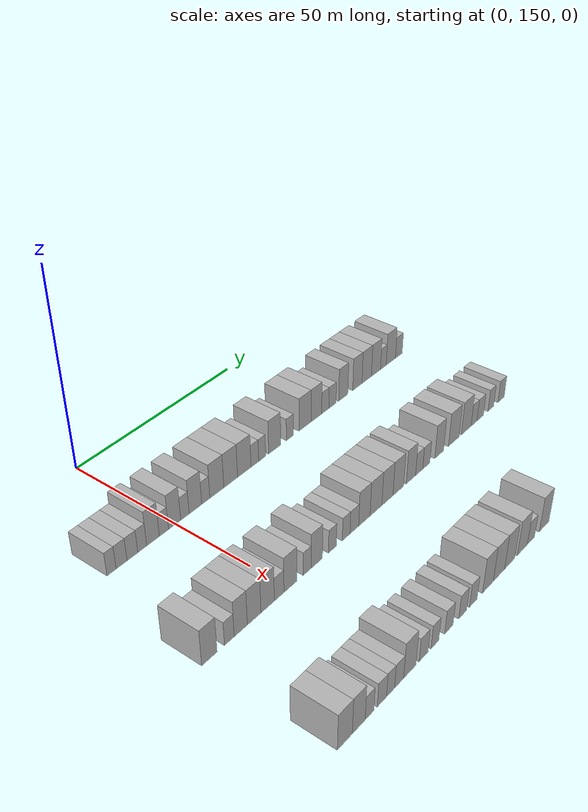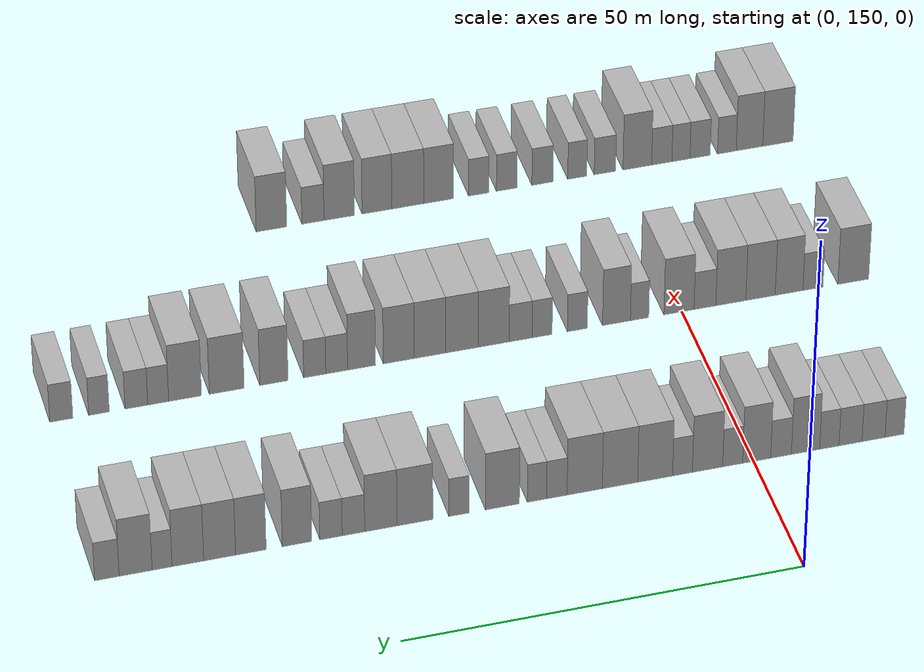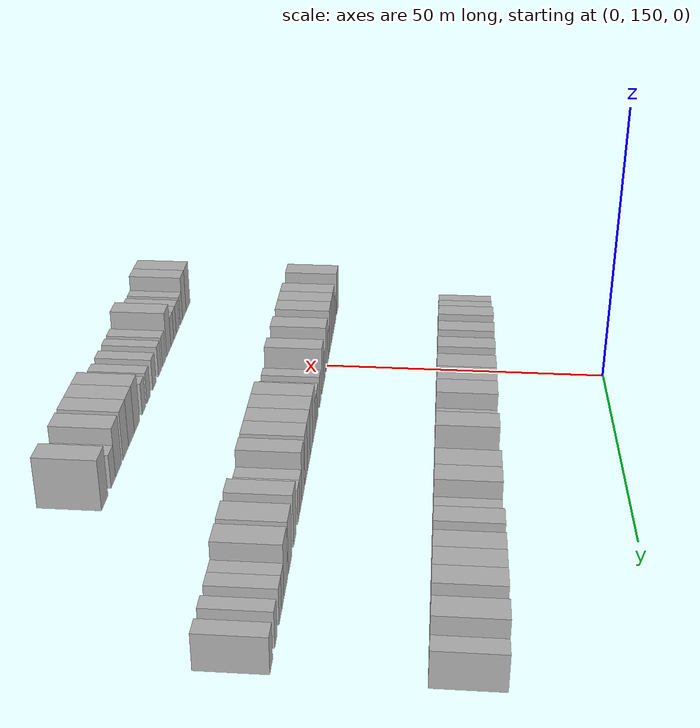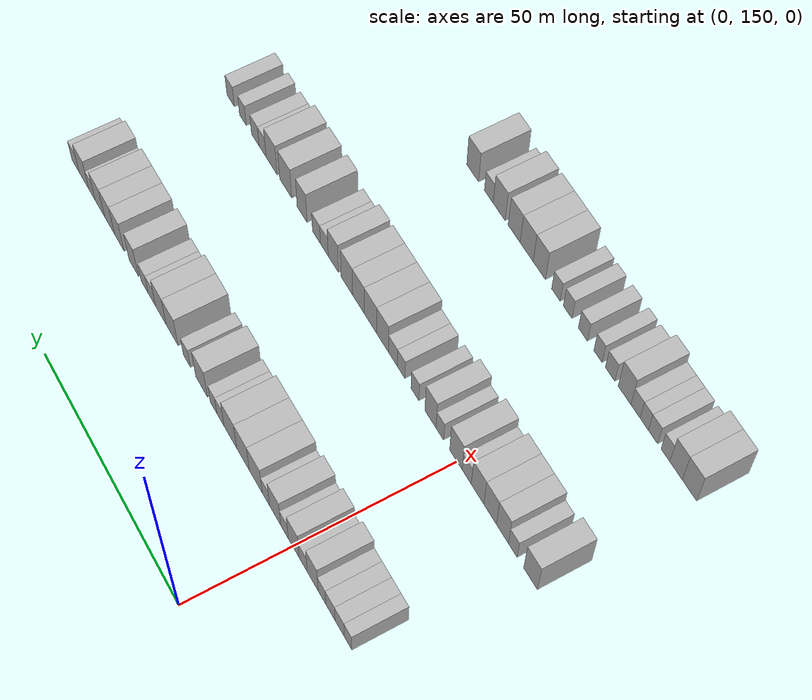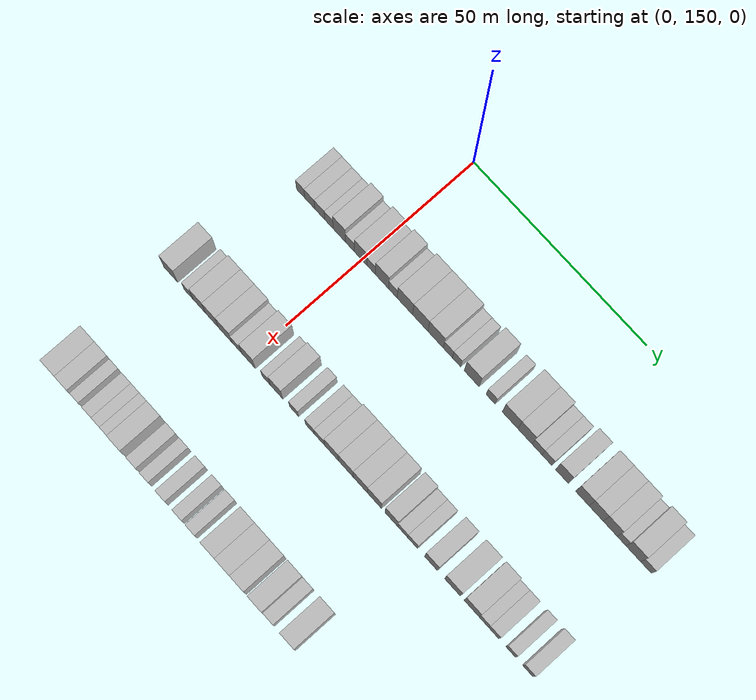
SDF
<sdf version="1.6">
 <world name="default">
  <model name="building_145">
   <static>1</static>
   <pose>25.0000 131.8063 0 0.000000 0.000000 0.000000</pose>
   <link name="link">
    <pose>0 0 3.00 0 0 0</pose>
    <collision name="collision"><geometry><box><size>10.0000 2.4583 6.0000</size></box></geometry></collision>
    <visual name="visual">
     <cast_shadows>0</cast_shadows>
     <geometry><box><size>10.0000 2.4583 6.0000</size></box></geometry>
     <material>
      <script>
       <uri>model://HANNAS_wall/materials/scripts</uri>
       <uri>model://HANNAS_wall/materials/textures</uri>
       <name>vrc/HANNAS_wall</name>
      </script>
     </material>
    </visual>
   </link>
  </model>
  <model name="building_146">
   <static>1</static>
   <pose>25.0000 134.5310 0 0.000000 0.000000 0.000000</pose>
   <link name="link">
    <pose>0 0 3.00 0 0 0</pose>
    <collision name="collision"><geometry><box><size>10.0000 2.9912 6.0000</size></box></geometry></collision>
    <visual name="visual">
     <cast_shadows>0</cast_shadows>
     <geometry><box><size>10.0000 2.9912 6.0000</size></box></geometry>
     <material>
      <script>
       <uri>model://HANNAS_wall/materials/scripts</uri>
       <uri>model://HANNAS_wall/materials/textures</uri>
       <name>vrc/HANNAS_wall</name>
      </script>
     </material>
    </visual>
   </link>
  </model>
  <model name="building_147">
   <static>1</static>
   <pose>25.0000 137.5135 0 0.000000 0.000000 0.000000</pose>
   <link name="link">
    <pose>0 0 3.00 0 0 0</pose>
    <collision name="collision"><geometry><box><size>10.0000 2.9738 6.0000</size></box></geometry></collision>
    <visual name="visual">
     <cast_shadows>0</cast_shadows>
     <geometry><box><size>10.0000 2.9738 6.0000</size></box></geometry>
     <material>
      <script>
       <uri>model://HANNAS_wall/materials/scripts</uri>
       <uri>model://HANNAS_wall/materials/textures</uri>
       <name>vrc/HANNAS_wall</name>
      </script>
     </material>
    </visual>
   </link>
  </model>
  <model name="building_148">
   <static>1</static>
   <pose>25.0000 140.2583 0 0.000000 0.000000 0.000000</pose>
   <link name="link">
    <pose>0 0 3.00 0 0 0</pose>
    <collision name="collision"><geometry><box><size>10.0000 2.5157 6.0000</size></box></geometry></collision>
    <visual name="visual">
     <cast_shadows>0</cast_shadows>
     <geometry><box><size>10.0000 2.5157 6.0000</size></box></geometry>
     <material>
      <script>
       <uri>model://HANNAS_wall/materials/scripts</uri>
       <uri>model://HANNAS_wall/materials/textures</uri>
       <name>vrc/HANNAS_wall</name>
      </script>
     </material>
    </visual>
   </link>
  </model>
  <model name="building_149">
   <static>1</static>
   <pose>25.0000 143.3381 0 0.000000 0.000000 0.000000</pose>
   <link name="link">
    <pose>0 0 4.50 0 0 0</pose>
    <collision name="collision"><geometry><box><size>10.0000 3.6441 9.0000</size></box></geometry></collision>
    <visual name="visual">
     <cast_shadows>0</cast_shadows>
     <geometry><box><size>10.0000 3.6441 9.0000</size></box></geometry>
     <material>
      <script>
       <uri>model://HANNAS_wall/materials/scripts</uri>
       <uri>model://HANNAS_wall/materials/textures</uri>
       <name>vrc/HANNAS_wall</name>
      </script>
     </material>
    </visual>
   </link>
  </model>
  <model name="building_150">
   <static>1</static>
   <pose>25.0000 146.4960 0 0.000000 0.000000 0.000000</pose>
   <link name="link">
    <pose>0 0 3.00 0 0 0</pose>
    <collision name="collision"><geometry><box><size>10.0000 2.6716 6.0000</size></box></geometry></collision>
    <visual name="visual">
     <cast_shadows>0</cast_shadows>
     <geometry><box><size>10.0000 2.6716 6.0000</size></box></geometry>
     <material>
      <script>
       <uri>model://HANNAS_wall/materials/scripts</uri>
       <uri>model://HANNAS_wall/materials/textures</uri>
       <name>vrc/HANNAS_wall</name>
      </script>
     </material>
    </visual>
   </link>
  </model>
  <model name="building_151">
   <static>1</static>
   <pose>25.0000 149.6413 0 0.000000 0.000000 0.000000</pose>
   <link name="link">
    <pose>0 0 4.50 0 0 0</pose>
    <collision name="collision"><geometry><box><size>10.0000 3.6190 9.0000</size></box></geometry></collision>
    <visual name="visual">
     <cast_shadows>0</cast_shadows>
     <geometry><box><size>10.0000 3.6190 9.0000</size></box></geometry>
     <material>
      <script>
       <uri>model://HANNAS_wall/materials/scripts</uri>
       <uri>model://HANNAS_wall/materials/textures</uri>
       <name>vrc/HANNAS_wall</name>
      </script>
     </material>
    </visual>
   </link>
  </model>
  <model name="building_152">
   <static>1</static>
   <pose>25.0000 152.7223 0 0.000000 0.000000 0.000000</pose>
   <link name="link">
    <pose>0 0 3.00 0 0 0</pose>
    <collision name="collision"><geometry><box><size>10.0000 2.5431 6.0000</size></box></geometry></collision>
    <visual name="visual">
     <cast_shadows>0</cast_shadows>
     <geometry><box><size>10.0000 2.5431 6.0000</size></box></geometry>
     <material>
      <script>
       <uri>model://HANNAS_wall/materials/scripts</uri>
       <uri>model://HANNAS_wall/materials/textures</uri>
       <name>vrc/HANNAS_wall</name>
      </script>
     </material>
    </visual>
   </link>
  </model>
  <model name="building_153">
   <static>1</static>
   <pose>25.0000 155.9343 0 0.000000 0.000000 0.000000</pose>
   <link name="link">
    <pose>0 0 4.50 0 0 0</pose>
    <collision name="collision"><geometry><box><size>10.0000 3.8809 9.0000</size></box></geometry></collision>
    <visual name="visual">
     <cast_shadows>0</cast_shadows>
     <geometry><box><size>10.0000 3.8809 9.0000</size></box></geometry>
     <material>
      <script>
       <uri>model://HANNAS_wall/materials/scripts</uri>
       <uri>model://HANNAS_wall/materials/textures</uri>
       <name>vrc/HANNAS_wall</name>
      </script>
     </material>
    </visual>
   </link>
  </model>
  <model name="building_154">
   <static>1</static>
   <pose>25.0000 159.1420 0 0.000000 0.000000 0.000000</pose>
   <link name="link">
    <pose>0 0 3.00 0 0 0</pose>
    <collision name="collision"><geometry><box><size>10.0000 2.5345 6.0000</size></box></geometry></collision>
    <visual name="visual">
     <cast_shadows>0</cast_shadows>
     <geometry><box><size>10.0000 2.5345 6.0000</size></box></geometry>
     <material>
      <script>
       <uri>model://HANNAS_wall/materials/scripts</uri>
       <uri>model://HANNAS_wall/materials/textures</uri>
       <name>vrc/HANNAS_wall</name>
      </script>
     </material>
    </visual>
   </link>
  </model>
  <model name="building_155">
   <static>1</static>
   <pose>25.0000 162.6363 0 0.000000 0.000000 0.000000</pose>
   <link name="link">
    <pose>0 0 4.50 0 0 0</pose>
    <collision name="collision"><geometry><box><size>10.0000 4.4540 9.0000</size></box></geometry></collision>
    <visual name="visual">
     <cast_shadows>0</cast_shadows>
     <geometry><box><size>10.0000 4.4540 9.0000</size></box></geometry>
     <material>
      <script>
       <uri>model://HANNAS_wall/materials/scripts</uri>
       <uri>model://HANNAS_wall/materials/textures</uri>
       <name>vrc/HANNAS_wall</name>
      </script>
     </material>
    </visual>
   </link>
  </model>
  <model name="building_156">
   <static>1</static>
   <pose>25.0000 167.1063 0 0.000000 0.000000 0.000000</pose>
   <link name="link">
    <pose>0 0 4.50 0 0 0</pose>
    <collision name="collision"><geometry><box><size>10.0000 4.4860 9.0000</size></box></geometry></collision>
    <visual name="visual">
     <cast_shadows>0</cast_shadows>
     <geometry><box><size>10.0000 4.4860 9.0000</size></box></geometry>
     <material>
      <script>
       <uri>model://HANNAS_wall/materials/scripts</uri>
       <uri>model://HANNAS_wall/materials/textures</uri>
       <name>vrc/HANNAS_wall</name>
      </script>
     </material>
    </visual>
   </link>
  </model>
  <model name="building_157">
   <static>1</static>
   <pose>25.0000 171.5911 0 0.000000 0.000000 0.000000</pose>
   <link name="link">
    <pose>0 0 4.50 0 0 0</pose>
    <collision name="collision"><geometry><box><size>10.0000 4.4835 9.0000</size></box></geometry></collision>
    <visual name="visual">
     <cast_shadows>0</cast_shadows>
     <geometry><box><size>10.0000 4.4835 9.0000</size></box></geometry>
     <material>
      <script>
       <uri>model://HANNAS_wall/materials/scripts</uri>
       <uri>model://HANNAS_wall/materials/textures</uri>
       <name>vrc/HANNAS_wall</name>
      </script>
     </material>
    </visual>
   </link>
  </model>
  <model name="building_158">
   <static>1</static>
   <pose>25.0000 175.1299 0 0.000000 0.000000 0.000000</pose>
   <link name="link">
    <pose>0 0 3.00 0 0 0</pose>
    <collision name="collision"><geometry><box><size>10.0000 2.5942 6.0000</size></box></geometry></collision>
    <visual name="visual">
     <cast_shadows>0</cast_shadows>
     <geometry><box><size>10.0000 2.5942 6.0000</size></box></geometry>
     <material>
      <script>
       <uri>model://HANNAS_wall/materials/scripts</uri>
       <uri>model://HANNAS_wall/materials/textures</uri>
       <name>vrc/HANNAS_wall</name>
      </script>
     </material>
    </visual>
   </link>
  </model>
  <model name="building_159">
   <static>1</static>
   <pose>25.0000 177.6455 0 0.000000 0.000000 0.000000</pose>
   <link name="link">
    <pose>0 0 3.00 0 0 0</pose>
    <collision name="collision"><geometry><box><size>10.0000 2.4369 6.0000</size></box></geometry></collision>
    <visual name="visual">
     <cast_shadows>0</cast_shadows>
     <geometry><box><size>10.0000 2.4369 6.0000</size></box></geometry>
     <material>
      <script>
       <uri>model://HANNAS_wall/materials/scripts</uri>
       <uri>model://HANNAS_wall/materials/textures</uri>
       <name>vrc/HANNAS_wall</name>
      </script>
     </material>
    </visual>
   </link>
  </model>
  <model name="building_160">
   <static>1</static>
   <pose>25.0000 182.0093 0 0.000000 0.000000 0.000000</pose>
   <link name="link">
    <pose>0 0 4.50 0 0 0</pose>
    <collision name="collision"><geometry><box><size>10.0000 4.2907 9.0000</size></box></geometry></collision>
    <visual name="visual">
     <cast_shadows>0</cast_shadows>
     <geometry><box><size>10.0000 4.2907 9.0000</size></box></geometry>
     <material>
      <script>
       <uri>model://HANNAS_wall/materials/scripts</uri>
       <uri>model://HANNAS_wall/materials/textures</uri>
       <name>vrc/HANNAS_wall</name>
      </script>
     </material>
    </visual>
   </link>
  </model>
  <model name="building_161">
   <static>1</static>
   <pose>25.0000 187.4518 0 0.000000 0.000000 0.000000</pose>
   <link name="link">
    <pose>0 0 3.00 0 0 0</pose>
    <collision name="collision"><geometry><box><size>10.0000 2.5943 6.0000</size></box></geometry></collision>
    <visual name="visual">
     <cast_shadows>0</cast_shadows>
     <geometry><box><size>10.0000 2.5943 6.0000</size></box></geometry>
     <material>
      <script>
       <uri>model://HANNAS_wall/materials/scripts</uri>
       <uri>model://HANNAS_wall/materials/textures</uri>
       <name>vrc/HANNAS_wall</name>
      </script>
     </material>
    </visual>
   </link>
  </model>
  <model name="building_162">
   <static>1</static>
   <pose>25.0000 192.9869 0 0.000000 0.000000 0.000000</pose>
   <link name="link">
    <pose>0 0 4.50 0 0 0</pose>
    <collision name="collision"><geometry><box><size>10.0000 4.4760 9.0000</size></box></geometry></collision>
    <visual name="visual">
     <cast_shadows>0</cast_shadows>
     <geometry><box><size>10.0000 4.4760 9.0000</size></box></geometry>
     <material>
      <script>
       <uri>model://HANNAS_wall/materials/scripts</uri>
       <uri>model://HANNAS_wall/materials/textures</uri>
       <name>vrc/HANNAS_wall</name>
      </script>
     </material>
    </visual>
   </link>
  </model>
  <model name="building_163">
   <static>1</static>
   <pose>25.0000 197.2497 0 0.000000 0.000000 0.000000</pose>
   <link name="link">
    <pose>0 0 4.50 0 0 0</pose>
    <collision name="collision"><geometry><box><size>10.0000 4.0496 9.0000</size></box></geometry></collision>
    <visual name="visual">
     <cast_shadows>0</cast_shadows>
     <geometry><box><size>10.0000 4.0496 9.0000</size></box></geometry>
     <material>
      <script>
       <uri>model://HANNAS_wall/materials/scripts</uri>
       <uri>model://HANNAS_wall/materials/textures</uri>
       <name>vrc/HANNAS_wall</name>
      </script>
     </material>
    </visual>
   </link>
  </model>
  <model name="building_164">
   <static>1</static>
   <pose>25.0000 200.6773 0 0.000000 0.000000 0.000000</pose>
   <link name="link">
    <pose>0 0 3.00 0 0 0</pose>
    <collision name="collision"><geometry><box><size>10.0000 2.8056 6.0000</size></box></geometry></collision>
    <visual name="visual">
     <cast_shadows>0</cast_shadows>
     <geometry><box><size>10.0000 2.8056 6.0000</size></box></geometry>
     <material>
      <script>
       <uri>model://HANNAS_wall/materials/scripts</uri>
       <uri>model://HANNAS_wall/materials/textures</uri>
       <name>vrc/HANNAS_wall</name>
      </script>
     </material>
    </visual>
   </link>
  </model>
  <model name="building_165">
   <static>1</static>
   <pose>25.0000 203.4737 0 0.000000 0.000000 0.000000</pose>
   <link name="link">
    <pose>0 0 3.00 0 0 0</pose>
    <collision name="collision"><geometry><box><size>10.0000 2.7872 6.0000</size></box></geometry></collision>
    <visual name="visual">
     <cast_shadows>0</cast_shadows>
     <geometry><box><size>10.0000 2.7872 6.0000</size></box></geometry>
     <material>
      <script>
       <uri>model://HANNAS_wall/materials/scripts</uri>
       <uri>model://HANNAS_wall/materials/textures</uri>
       <name>vrc/HANNAS_wall</name>
      </script>
     </material>
    </visual>
   </link>
  </model>
  <model name="building_166">
   <static>1</static>
   <pose>25.0000 207.6938 0 0.000000 0.000000 0.000000</pose>
   <link name="link">
    <pose>0 0 4.50 0 0 0</pose>
    <collision name="collision"><geometry><box><size>10.0000 3.6531 9.0000</size></box></geometry></collision>
    <visual name="visual">
     <cast_shadows>0</cast_shadows>
     <geometry><box><size>10.0000 3.6531 9.0000</size></box></geometry>
     <material>
      <script>
       <uri>model://HANNAS_wall/materials/scripts</uri>
       <uri>model://HANNAS_wall/materials/textures</uri>
       <name>vrc/HANNAS_wall</name>
      </script>
     </material>
    </visual>
   </link>
  </model>
  <model name="building_167">
   <static>1</static>
   <pose>25.0000 213.4099 0 0.000000 0.000000 0.000000</pose>
   <link name="link">
    <pose>0 0 4.50 0 0 0</pose>
    <collision name="collision"><geometry><box><size>10.0000 3.7790 9.0000</size></box></geometry></collision>
    <visual name="visual">
     <cast_shadows>0</cast_shadows>
     <geometry><box><size>10.0000 3.7790 9.0000</size></box></geometry>
     <material>
      <script>
       <uri>model://HANNAS_wall/materials/scripts</uri>
       <uri>model://HANNAS_wall/materials/textures</uri>
       <name>vrc/HANNAS_wall</name>
      </script>
     </material>
    </visual>
   </link>
  </model>
  <model name="building_168">
   <static>1</static>
   <pose>25.0000 217.2688 0 0.000000 0.000000 0.000000</pose>
   <link name="link">
    <pose>0 0 4.50 0 0 0</pose>
    <collision name="collision"><geometry><box><size>10.0000 3.9390 9.0000</size></box></geometry></collision>
    <visual name="visual">
     <cast_shadows>0</cast_shadows>
     <geometry><box><size>10.0000 3.9390 9.0000</size></box></geometry>
     <material>
      <script>
       <uri>model://HANNAS_wall/materials/scripts</uri>
       <uri>model://HANNAS_wall/materials/textures</uri>
       <name>vrc/HANNAS_wall</name>
      </script>
     </material>
    </visual>
   </link>
  </model>
  <model name="building_169">
   <static>1</static>
   <pose>25.0000 221.1882 0 0.000000 0.000000 0.000000</pose>
   <link name="link">
    <pose>0 0 4.50 0 0 0</pose>
    <collision name="collision"><geometry><box><size>10.0000 3.8998 9.0000</size></box></geometry></collision>
    <visual name="visual">
     <cast_shadows>0</cast_shadows>
     <geometry><box><size>10.0000 3.8998 9.0000</size></box></geometry>
     <material>
      <script>
       <uri>model://HANNAS_wall/materials/scripts</uri>
       <uri>model://HANNAS_wall/materials/textures</uri>
       <name>vrc/HANNAS_wall</name>
      </script>
     </material>
    </visual>
   </link>
  </model>
  <model name="building_170">
   <static>1</static>
   <pose>25.0000 224.3635 0 0.000000 0.000000 0.000000</pose>
   <link name="link">
    <pose>0 0 3.00 0 0 0</pose>
    <collision name="collision"><geometry><box><size>10.0000 2.4508 6.0000</size></box></geometry></collision>
    <visual name="visual">
     <cast_shadows>0</cast_shadows>
     <geometry><box><size>10.0000 2.4508 6.0000</size></box></geometry>
     <material>
      <script>
       <uri>model://HANNAS_wall/materials/scripts</uri>
       <uri>model://HANNAS_wall/materials/textures</uri>
       <name>vrc/HANNAS_wall</name>
      </script>
     </material>
    </visual>
   </link>
  </model>
  <model name="building_171">
   <static>1</static>
   <pose>25.0000 227.6121 0 0.000000 0.000000 0.000000</pose>
   <link name="link">
    <pose>0 0 4.50 0 0 0</pose>
    <collision name="collision"><geometry><box><size>10.0000 4.0464 9.0000</size></box></geometry></collision>
    <visual name="visual">
     <cast_shadows>0</cast_shadows>
     <geometry><box><size>10.0000 4.0464 9.0000</size></box></geometry>
     <material>
      <script>
       <uri>model://HANNAS_wall/materials/scripts</uri>
       <uri>model://HANNAS_wall/materials/textures</uri>
       <name>vrc/HANNAS_wall</name>
      </script>
     </material>
    </visual>
   </link>
  </model>
  <model name="building_172">
   <static>1</static>
   <pose>25.0000 231.1346 0 0.000000 0.000000 0.000000</pose>
   <link name="link">
    <pose>0 0 3.00 0 0 0</pose>
    <collision name="collision"><geometry><box><size>10.0000 2.9986 6.0000</size></box></geometry></collision>
    <visual name="visual">
     <cast_shadows>0</cast_shadows>
     <geometry><box><size>10.0000 2.9986 6.0000</size></box></geometry>
     <material>
      <script>
       <uri>model://HANNAS_wall/materials/scripts</uri>
       <uri>model://HANNAS_wall/materials/textures</uri>
       <name>vrc/HANNAS_wall</name>
      </script>
     </material>
    </visual>
   </link>
  </model>
  <model name="building_372">
   <static>1</static>
   <pose>55.0000 127.1709 0 0.000000 0.000000 0.000000</pose>
   <link name="link">
    <pose>0 0 4.50 0 0 0</pose>
    <collision name="collision"><geometry><box><size>10.0000 4.1288 9.0000</size></box></geometry></collision>
    <visual name="visual">
     <cast_shadows>0</cast_shadows>
     <geometry><box><size>10.0000 4.1288 9.0000</size></box></geometry>
     <material>
      <script>
       <uri>model://HANNAS_wall/materials/scripts</uri>
       <uri>model://HANNAS_wall/materials/textures</uri>
       <name>vrc/HANNAS_wall</name>
      </script>
     </material>
    </visual>
   </link>
  </model>
  <model name="building_373">
   <static>1</static>
   <pose>55.0000 132.5778 0 0.000000 0.000000 0.000000</pose>
   <link name="link">
    <pose>0 0 3.00 0 0 0</pose>
    <collision name="collision"><geometry><box><size>10.0000 2.6850 6.0000</size></box></geometry></collision>
    <visual name="visual">
     <cast_shadows>0</cast_shadows>
     <geometry><box><size>10.0000 2.6850 6.0000</size></box></geometry>
     <material>
      <script>
       <uri>model://HANNAS_wall/materials/scripts</uri>
       <uri>model://HANNAS_wall/materials/textures</uri>
       <name>vrc/HANNAS_wall</name>
      </script>
     </material>
    </visual>
   </link>
  </model>
  <model name="building_374">
   <static>1</static>
   <pose>55.0000 135.7712 0 0.000000 0.000000 0.000000</pose>
   <link name="link">
    <pose>0 0 4.50 0 0 0</pose>
    <collision name="collision"><geometry><box><size>10.0000 3.7020 9.0000</size></box></geometry></collision>
    <visual name="visual">
     <cast_shadows>0</cast_shadows>
     <geometry><box><size>10.0000 3.7020 9.0000</size></box></geometry>
     <material>
      <script>
       <uri>model://HANNAS_wall/materials/scripts</uri>
       <uri>model://HANNAS_wall/materials/textures</uri>
       <name>vrc/HANNAS_wall</name>
      </script>
     </material>
    </visual>
   </link>
  </model>
  <model name="building_375">
   <static>1</static>
   <pose>55.0000 139.5816 0 0.000000 0.000000 0.000000</pose>
   <link name="link">
    <pose>0 0 4.50 0 0 0</pose>
    <collision name="collision"><geometry><box><size>10.0000 3.9187 9.0000</size></box></geometry></collision>
    <visual name="visual">
     <cast_shadows>0</cast_shadows>
     <geometry><box><size>10.0000 3.9187 9.0000</size></box></geometry>
     <material>
      <script>
       <uri>model://HANNAS_wall/materials/scripts</uri>
       <uri>model://HANNAS_wall/materials/textures</uri>
       <name>vrc/HANNAS_wall</name>
      </script>
     </material>
    </visual>
   </link>
  </model>
  <model name="building_376">
   <static>1</static>
   <pose>55.0000 143.5348 0 0.000000 0.000000 0.000000</pose>
   <link name="link">
    <pose>0 0 4.50 0 0 0</pose>
    <collision name="collision"><geometry><box><size>10.0000 3.9879 9.0000</size></box></geometry></collision>
    <visual name="visual">
     <cast_shadows>0</cast_shadows>
     <geometry><box><size>10.0000 3.9879 9.0000</size></box></geometry>
     <material>
      <script>
       <uri>model://HANNAS_wall/materials/scripts</uri>
       <uri>model://HANNAS_wall/materials/textures</uri>
       <name>vrc/HANNAS_wall</name>
      </script>
     </material>
    </visual>
   </link>
  </model>
  <model name="building_377">
   <static>1</static>
   <pose>55.0000 146.9724 0 0.000000 0.000000 0.000000</pose>
   <link name="link">
    <pose>0 0 3.00 0 0 0</pose>
    <collision name="collision"><geometry><box><size>10.0000 2.8873 6.0000</size></box></geometry></collision>
    <visual name="visual">
     <cast_shadows>0</cast_shadows>
     <geometry><box><size>10.0000 2.8873 6.0000</size></box></geometry>
     <material>
      <script>
       <uri>model://HANNAS_wall/materials/scripts</uri>
       <uri>model://HANNAS_wall/materials/textures</uri>
       <name>vrc/HANNAS_wall</name>
      </script>
     </material>
    </visual>
   </link>
  </model>
  <model name="building_378">
   <static>1</static>
   <pose>55.0000 150.4129 0 0.000000 0.000000 0.000000</pose>
   <link name="link">
    <pose>0 0 4.50 0 0 0</pose>
    <collision name="collision"><geometry><box><size>10.0000 3.9935 9.0000</size></box></geometry></collision>
    <visual name="visual">
     <cast_shadows>0</cast_shadows>
     <geometry><box><size>10.0000 3.9935 9.0000</size></box></geometry>
     <material>
      <script>
       <uri>model://HANNAS_wall/materials/scripts</uri>
       <uri>model://HANNAS_wall/materials/textures</uri>
       <name>vrc/HANNAS_wall</name>
      </script>
     </material>
    </visual>
   </link>
  </model>
  <model name="building_379">
   <static>1</static>
   <pose>55.0000 155.6242 0 0.000000 0.000000 0.000000</pose>
   <link name="link">
    <pose>0 0 3.00 0 0 0</pose>
    <collision name="collision"><geometry><box><size>10.0000 2.4291 6.0000</size></box></geometry></collision>
    <visual name="visual">
     <cast_shadows>0</cast_shadows>
     <geometry><box><size>10.0000 2.4291 6.0000</size></box></geometry>
     <material>
      <script>
       <uri>model://HANNAS_wall/materials/scripts</uri>
       <uri>model://HANNAS_wall/materials/textures</uri>
       <name>vrc/HANNAS_wall</name>
      </script>
     </material>
    </visual>
   </link>
  </model>
  <model name="building_380">
   <static>1</static>
   <pose>55.0000 158.6717 0 0.000000 0.000000 0.000000</pose>
   <link name="link">
    <pose>0 0 4.50 0 0 0</pose>
    <collision name="collision"><geometry><box><size>10.0000 3.6660 9.0000</size></box></geometry></collision>
    <visual name="visual">
     <cast_shadows>0</cast_shadows>
     <geometry><box><size>10.0000 3.6660 9.0000</size></box></geometry>
     <material>
      <script>
       <uri>model://HANNAS_wall/materials/scripts</uri>
       <uri>model://HANNAS_wall/materials/textures</uri>
       <name>vrc/HANNAS_wall</name>
      </script>
     </material>
    </visual>
   </link>
  </model>
  <model name="building_381">
   <static>1</static>
   <pose>55.0000 163.8159 0 0.000000 0.000000 0.000000</pose>
   <link name="link">
    <pose>0 0 3.00 0 0 0</pose>
    <collision name="collision"><geometry><box><size>10.0000 2.6225 6.0000</size></box></geometry></collision>
    <visual name="visual">
     <cast_shadows>0</cast_shadows>
     <geometry><box><size>10.0000 2.6225 6.0000</size></box></geometry>
     <material>
      <script>
       <uri>model://HANNAS_wall/materials/scripts</uri>
       <uri>model://HANNAS_wall/materials/textures</uri>
       <name>vrc/HANNAS_wall</name>
      </script>
     </material>
    </visual>
   </link>
  </model>
  <model name="building_382">
   <static>1</static>
   <pose>55.0000 168.4376 0 0.000000 0.000000 0.000000</pose>
   <link name="link">
    <pose>0 0 3.00 0 0 0</pose>
    <collision name="collision"><geometry><box><size>10.0000 2.6208 6.0000</size></box></geometry></collision>
    <visual name="visual">
     <cast_shadows>0</cast_shadows>
     <geometry><box><size>10.0000 2.6208 6.0000</size></box></geometry>
     <material>
      <script>
       <uri>model://HANNAS_wall/materials/scripts</uri>
       <uri>model://HANNAS_wall/materials/textures</uri>
       <name>vrc/HANNAS_wall</name>
      </script>
     </material>
    </visual>
   </link>
  </model>
  <model name="building_383">
   <static>1</static>
   <pose>55.0000 171.2417 0 0.000000 0.000000 0.000000</pose>
   <link name="link">
    <pose>0 0 3.00 0 0 0</pose>
    <collision name="collision"><geometry><box><size>10.0000 2.9873 6.0000</size></box></geometry></collision>
    <visual name="visual">
     <cast_shadows>0</cast_shadows>
     <geometry><box><size>10.0000 2.9873 6.0000</size></box></geometry>
     <material>
      <script>
       <uri>model://HANNAS_wall/materials/scripts</uri>
       <uri>model://HANNAS_wall/materials/textures</uri>
       <name>vrc/HANNAS_wall</name>
      </script>
     </material>
    </visual>
   </link>
  </model>
  <model name="building_384">
   <static>1</static>
   <pose>55.0000 174.7438 0 0.000000 0.000000 0.000000</pose>
   <link name="link">
    <pose>0 0 4.50 0 0 0</pose>
    <collision name="collision"><geometry><box><size>10.0000 4.0168 9.0000</size></box></geometry></collision>
    <visual name="visual">
     <cast_shadows>0</cast_shadows>
     <geometry><box><size>10.0000 4.0168 9.0000</size></box></geometry>
     <material>
      <script>
       <uri>model://HANNAS_wall/materials/scripts</uri>
       <uri>model://HANNAS_wall/materials/textures</uri>
       <name>vrc/HANNAS_wall</name>
      </script>
     </material>
    </visual>
   </link>
  </model>
  <model name="building_385">
   <static>1</static>
   <pose>55.0000 178.8881 0 0.000000 0.000000 0.000000</pose>
   <link name="link">
    <pose>0 0 4.50 0 0 0</pose>
    <collision name="collision"><geometry><box><size>10.0000 4.2718 9.0000</size></box></geometry></collision>
    <visual name="visual">
     <cast_shadows>0</cast_shadows>
     <geometry><box><size>10.0000 4.2718 9.0000</size></box></geometry>
     <material>
      <script>
       <uri>model://HANNAS_wall/materials/scripts</uri>
       <uri>model://HANNAS_wall/materials/textures</uri>
       <name>vrc/HANNAS_wall</name>
      </script>
     </material>
    </visual>
   </link>
  </model>
  <model name="building_386">
   <static>1</static>
   <pose>55.0000 183.0654 0 0.000000 0.000000 0.000000</pose>
   <link name="link">
    <pose>0 0 4.50 0 0 0</pose>
    <collision name="collision"><geometry><box><size>10.0000 4.0828 9.0000</size></box></geometry></collision>
    <visual name="visual">
     <cast_shadows>0</cast_shadows>
     <geometry><box><size>10.0000 4.0828 9.0000</size></box></geometry>
     <material>
      <script>
       <uri>model://HANNAS_wall/materials/scripts</uri>
       <uri>model://HANNAS_wall/materials/textures</uri>
       <name>vrc/HANNAS_wall</name>
      </script>
     </material>
    </visual>
   </link>
  </model>
  <model name="building_387">
   <static>1</static>
   <pose>55.0000 187.1144 0 0.000000 0.000000 0.000000</pose>
   <link name="link">
    <pose>0 0 4.50 0 0 0</pose>
    <collision name="collision"><geometry><box><size>10.0000 4.0152 9.0000</size></box></geometry></collision>
    <visual name="visual">
     <cast_shadows>0</cast_shadows>
     <geometry><box><size>10.0000 4.0152 9.0000</size></box></geometry>
     <material>
      <script>
       <uri>model://HANNAS_wall/materials/scripts</uri>
       <uri>model://HANNAS_wall/materials/textures</uri>
       <name>vrc/HANNAS_wall</name>
      </script>
     </material>
    </visual>
   </link>
  </model>
  <model name="building_388">
   <static>1</static>
   <pose>55.0000 191.9278 0 0.000000 0.000000 0.000000</pose>
   <link name="link">
    <pose>0 0 4.50 0 0 0</pose>
    <collision name="collision"><geometry><box><size>10.0000 3.6116 9.0000</size></box></geometry></collision>
    <visual name="visual">
     <cast_shadows>0</cast_shadows>
     <geometry><box><size>10.0000 3.6116 9.0000</size></box></geometry>
     <material>
      <script>
       <uri>model://HANNAS_wall/materials/scripts</uri>
       <uri>model://HANNAS_wall/materials/textures</uri>
       <name>vrc/HANNAS_wall</name>
      </script>
     </material>
    </visual>
   </link>
  </model>
  <model name="building_389">
   <static>1</static>
   <pose>55.0000 195.1419 0 0.000000 0.000000 0.000000</pose>
   <link name="link">
    <pose>0 0 3.00 0 0 0</pose>
    <collision name="collision"><geometry><box><size>10.0000 2.8168 6.0000</size></box></geometry></collision>
    <visual name="visual">
     <cast_shadows>0</cast_shadows>
     <geometry><box><size>10.0000 2.8168 6.0000</size></box></geometry>
     <material>
      <script>
       <uri>model://HANNAS_wall/materials/scripts</uri>
       <uri>model://HANNAS_wall/materials/textures</uri>
       <name>vrc/HANNAS_wall</name>
      </script>
     </material>
    </visual>
   </link>
  </model>
  <model name="building_390">
   <static>1</static>
   <pose>55.0000 197.9761 0 0.000000 0.000000 0.000000</pose>
   <link name="link">
    <pose>0 0 3.00 0 0 0</pose>
    <collision name="collision"><geometry><box><size>10.0000 2.8515 6.0000</size></box></geometry></collision>
    <visual name="visual">
     <cast_shadows>0</cast_shadows>
     <geometry><box><size>10.0000 2.8515 6.0000</size></box></geometry>
     <material>
      <script>
       <uri>model://HANNAS_wall/materials/scripts</uri>
       <uri>model://HANNAS_wall/materials/textures</uri>
       <name>vrc/HANNAS_wall</name>
      </script>
     </material>
    </visual>
   </link>
  </model>
  <model name="building_391">
   <static>1</static>
   <pose>55.0000 203.2181 0 0.000000 0.000000 0.000000</pose>
   <link name="link">
    <pose>0 0 4.50 0 0 0</pose>
    <collision name="collision"><geometry><box><size>10.0000 3.6325 9.0000</size></box></geometry></collision>
    <visual name="visual">
     <cast_shadows>0</cast_shadows>
     <geometry><box><size>10.0000 3.6325 9.0000</size></box></geometry>
     <material>
      <script>
       <uri>model://HANNAS_wall/materials/scripts</uri>
       <uri>model://HANNAS_wall/materials/textures</uri>
       <name>vrc/HANNAS_wall</name>
      </script>
     </material>
    </visual>
   </link>
  </model>
  <model name="building_392">
   <static>1</static>
   <pose>55.0000 209.2650 0 0.000000 0.000000 0.000000</pose>
   <link name="link">
    <pose>0 0 4.50 0 0 0</pose>
    <collision name="collision"><geometry><box><size>10.0000 4.4614 9.0000</size></box></geometry></collision>
    <visual name="visual">
     <cast_shadows>0</cast_shadows>
     <geometry><box><size>10.0000 4.4614 9.0000</size></box></geometry>
     <material>
      <script>
       <uri>model://HANNAS_wall/materials/scripts</uri>
       <uri>model://HANNAS_wall/materials/textures</uri>
       <name>vrc/HANNAS_wall</name>
      </script>
     </material>
    </visual>
   </link>
  </model>
  <model name="building_393">
   <static>1</static>
   <pose>55.0000 214.5900 0 0.000000 0.000000 0.000000</pose>
   <link name="link">
    <pose>0 0 4.50 0 0 0</pose>
    <collision name="collision"><geometry><box><size>10.0000 4.1888 9.0000</size></box></geometry></collision>
    <visual name="visual">
     <cast_shadows>0</cast_shadows>
     <geometry><box><size>10.0000 4.1888 9.0000</size></box></geometry>
     <material>
      <script>
       <uri>model://HANNAS_wall/materials/scripts</uri>
       <uri>model://HANNAS_wall/materials/textures</uri>
       <name>vrc/HANNAS_wall</name>
      </script>
     </material>
    </visual>
   </link>
  </model>
  <model name="building_394">
   <static>1</static>
   <pose>55.0000 218.0144 0 0.000000 0.000000 0.000000</pose>
   <link name="link">
    <pose>0 0 3.00 0 0 0</pose>
    <collision name="collision"><geometry><box><size>10.0000 2.6599 6.0000</size></box></geometry></collision>
    <visual name="visual">
     <cast_shadows>0</cast_shadows>
     <geometry><box><size>10.0000 2.6599 6.0000</size></box></geometry>
     <material>
      <script>
       <uri>model://HANNAS_wall/materials/scripts</uri>
       <uri>model://HANNAS_wall/materials/textures</uri>
       <name>vrc/HANNAS_wall</name>
      </script>
     </material>
    </visual>
   </link>
  </model>
  <model name="building_395">
   <static>1</static>
   <pose>55.0000 220.7866 0 0.000000 0.000000 0.000000</pose>
   <link name="link">
    <pose>0 0 3.00 0 0 0</pose>
    <collision name="collision"><geometry><box><size>10.0000 2.8844 6.0000</size></box></geometry></collision>
    <visual name="visual">
     <cast_shadows>0</cast_shadows>
     <geometry><box><size>10.0000 2.8844 6.0000</size></box></geometry>
     <material>
      <script>
       <uri>model://HANNAS_wall/materials/scripts</uri>
       <uri>model://HANNAS_wall/materials/textures</uri>
       <name>vrc/HANNAS_wall</name>
      </script>
     </material>
    </visual>
   </link>
  </model>
  <model name="building_396">
   <static>1</static>
   <pose>55.0000 225.5341 0 0.000000 0.000000 0.000000</pose>
   <link name="link">
    <pose>0 0 3.00 0 0 0</pose>
    <collision name="collision"><geometry><box><size>10.0000 2.6108 6.0000</size></box></geometry></collision>
    <visual name="visual">
     <cast_shadows>0</cast_shadows>
     <geometry><box><size>10.0000 2.6108 6.0000</size></box></geometry>
     <material>
      <script>
       <uri>model://HANNAS_wall/materials/scripts</uri>
       <uri>model://HANNAS_wall/materials/textures</uri>
       <name>vrc/HANNAS_wall</name>
      </script>
     </material>
    </visual>
   </link>
  </model>
  <model name="building_397">
   <static>1</static>
   <pose>55.0000 230.2982 0 0.000000 0.000000 0.000000</pose>
   <link name="link">
    <pose>0 0 3.00 0 0 0</pose>
    <collision name="collision"><geometry><box><size>10.0000 2.9173 6.0000</size></box></geometry></collision>
    <visual name="visual">
     <cast_shadows>0</cast_shadows>
     <geometry><box><size>10.0000 2.9173 6.0000</size></box></geometry>
     <material>
      <script>
       <uri>model://HANNAS_wall/materials/scripts</uri>
       <uri>model://HANNAS_wall/materials/textures</uri>
       <name>vrc/HANNAS_wall</name>
      </script>
     </material>
    </visual>
   </link>
  </model>
  <model name="building_600">
   <static>1</static>
   <pose>85.0000 127.6128 0 0.000000 0.000000 0.000000</pose>
   <link name="link">
    <pose>0 0 4.50 0 0 0</pose>
    <collision name="collision"><geometry><box><size>10.0000 4.1771 9.0000</size></box></geometry></collision>
    <visual name="visual">
     <cast_shadows>0</cast_shadows>
     <geometry><box><size>10.0000 4.1771 9.0000</size></box></geometry>
     <material>
      <script>
       <uri>model://HANNAS_wall/materials/scripts</uri>
       <uri>model://HANNAS_wall/materials/textures</uri>
       <name>vrc/HANNAS_wall</name>
      </script>
     </material>
    </visual>
   </link>
  </model>
  <model name="building_601">
   <static>1</static>
   <pose>85.0000 131.5382 0 0.000000 0.000000 0.000000</pose>
   <link name="link">
    <pose>0 0 4.50 0 0 0</pose>
    <collision name="collision"><geometry><box><size>10.0000 3.6738 9.0000</size></box></geometry></collision>
    <visual name="visual">
     <cast_shadows>0</cast_shadows>
     <geometry><box><size>10.0000 3.6738 9.0000</size></box></geometry>
     <material>
      <script>
       <uri>model://HANNAS_wall/materials/scripts</uri>
       <uri>model://HANNAS_wall/materials/textures</uri>
       <name>vrc/HANNAS_wall</name>
      </script>
     </material>
    </visual>
   </link>
  </model>
  <model name="building_602">
   <static>1</static>
   <pose>85.0000 134.6610 0 0.000000 0.000000 0.000000</pose>
   <link name="link">
    <pose>0 0 3.00 0 0 0</pose>
    <collision name="collision"><geometry><box><size>10.0000 2.5719 6.0000</size></box></geometry></collision>
    <visual name="visual">
     <cast_shadows>0</cast_shadows>
     <geometry><box><size>10.0000 2.5719 6.0000</size></box></geometry>
     <material>
      <script>
       <uri>model://HANNAS_wall/materials/scripts</uri>
       <uri>model://HANNAS_wall/materials/textures</uri>
       <name>vrc/HANNAS_wall</name>
      </script>
     </material>
    </visual>
   </link>
  </model>
  <model name="building_603">
   <static>1</static>
   <pose>85.0000 138.3397 0 0.000000 0.000000 0.000000</pose>
   <link name="link">
    <pose>0 0 3.00 0 0 0</pose>
    <collision name="collision"><geometry><box><size>10.0000 2.7855 6.0000</size></box></geometry></collision>
    <visual name="visual">
     <cast_shadows>0</cast_shadows>
     <geometry><box><size>10.0000 2.7855 6.0000</size></box></geometry>
     <material>
      <script>
       <uri>model://HANNAS_wall/materials/scripts</uri>
       <uri>model://HANNAS_wall/materials/textures</uri>
       <name>vrc/HANNAS_wall</name>
      </script>
     </material>
    </visual>
   </link>
  </model>
  <model name="building_604">
   <static>1</static>
   <pose>85.0000 140.9691 0 0.000000 0.000000 0.000000</pose>
   <link name="link">
    <pose>0 0 3.00 0 0 0</pose>
    <collision name="collision"><geometry><box><size>10.0000 2.4732 6.0000</size></box></geometry></collision>
    <visual name="visual">
     <cast_shadows>0</cast_shadows>
     <geometry><box><size>10.0000 2.4732 6.0000</size></box></geometry>
     <material>
      <script>
       <uri>model://HANNAS_wall/materials/scripts</uri>
       <uri>model://HANNAS_wall/materials/textures</uri>
       <name>vrc/HANNAS_wall</name>
      </script>
     </material>
    </visual>
   </link>
  </model>
  <model name="building_605">
   <static>1</static>
   <pose>85.0000 143.5925 0 0.000000 0.000000 0.000000</pose>
   <link name="link">
    <pose>0 0 3.00 0 0 0</pose>
    <collision name="collision"><geometry><box><size>10.0000 2.7736 6.0000</size></box></geometry></collision>
    <visual name="visual">
     <cast_shadows>0</cast_shadows>
     <geometry><box><size>10.0000 2.7736 6.0000</size></box></geometry>
     <material>
      <script>
       <uri>model://HANNAS_wall/materials/scripts</uri>
       <uri>model://HANNAS_wall/materials/textures</uri>
       <name>vrc/HANNAS_wall</name>
      </script>
     </material>
    </visual>
   </link>
  </model>
  <model name="building_606">
   <static>1</static>
   <pose>85.0000 146.9328 0 0.000000 0.000000 0.000000</pose>
   <link name="link">
    <pose>0 0 4.50 0 0 0</pose>
    <collision name="collision"><geometry><box><size>10.0000 3.9070 9.0000</size></box></geometry></collision>
    <visual name="visual">
     <cast_shadows>0</cast_shadows>
     <geometry><box><size>10.0000 3.9070 9.0000</size></box></geometry>
     <material>
      <script>
       <uri>model://HANNAS_wall/materials/scripts</uri>
       <uri>model://HANNAS_wall/materials/textures</uri>
       <name>vrc/HANNAS_wall</name>
      </script>
     </material>
    </visual>
   </link>
  </model>
  <model name="building_607">
   <static>1</static>
   <pose>85.0000 151.3514 0 0.000000 0.000000 0.000000</pose>
   <link name="link">
    <pose>0 0 3.00 0 0 0</pose>
    <collision name="collision"><geometry><box><size>10.0000 2.9304 6.0000</size></box></geometry></collision>
    <visual name="visual">
     <cast_shadows>0</cast_shadows>
     <geometry><box><size>10.0000 2.9304 6.0000</size></box></geometry>
     <material>
      <script>
       <uri>model://HANNAS_wall/materials/scripts</uri>
       <uri>model://HANNAS_wall/materials/textures</uri>
       <name>vrc/HANNAS_wall</name>
      </script>
     </material>
    </visual>
   </link>
  </model>
  <model name="building_608">
   <static>1</static>
   <pose>85.0000 155.1149 0 0.000000 0.000000 0.000000</pose>
   <link name="link">
    <pose>0 0 3.00 0 0 0</pose>
    <collision name="collision"><geometry><box><size>10.0000 2.5967 6.0000</size></box></geometry></collision>
    <visual name="visual">
     <cast_shadows>0</cast_shadows>
     <geometry><box><size>10.0000 2.5967 6.0000</size></box></geometry>
     <material>
      <script>
       <uri>model://HANNAS_wall/materials/scripts</uri>
       <uri>model://HANNAS_wall/materials/textures</uri>
       <name>vrc/HANNAS_wall</name>
      </script>
     </material>
    </visual>
   </link>
  </model>
  <model name="building_609">
   <static>1</static>
   <pose>85.0000 159.8480 0 0.000000 0.000000 0.000000</pose>
   <link name="link">
    <pose>0 0 3.00 0 0 0</pose>
    <collision name="collision"><geometry><box><size>10.0000 2.8694 6.0000</size></box></geometry></collision>
    <visual name="visual">
     <cast_shadows>0</cast_shadows>
     <geometry><box><size>10.0000 2.8694 6.0000</size></box></geometry>
     <material>
      <script>
       <uri>model://HANNAS_wall/materials/scripts</uri>
       <uri>model://HANNAS_wall/materials/textures</uri>
       <name>vrc/HANNAS_wall</name>
      </script>
     </material>
    </visual>
   </link>
  </model>
  <model name="building_610">
   <static>1</static>
   <pose>85.0000 164.6793 0 0.000000 0.000000 0.000000</pose>
   <link name="link">
    <pose>0 0 3.00 0 0 0</pose>
    <collision name="collision"><geometry><box><size>10.0000 2.7932 6.0000</size></box></geometry></collision>
    <visual name="visual">
     <cast_shadows>0</cast_shadows>
     <geometry><box><size>10.0000 2.7932 6.0000</size></box></geometry>
     <material>
      <script>
       <uri>model://HANNAS_wall/materials/scripts</uri>
       <uri>model://HANNAS_wall/materials/textures</uri>
       <name>vrc/HANNAS_wall</name>
      </script>
     </material>
    </visual>
   </link>
  </model>
  <model name="building_611">
   <static>1</static>
   <pose>85.0000 168.4536 0 0.000000 0.000000 0.000000</pose>
   <link name="link">
    <pose>0 0 3.00 0 0 0</pose>
    <collision name="collision"><geometry><box><size>10.0000 2.7554 6.0000</size></box></geometry></collision>
    <visual name="visual">
     <cast_shadows>0</cast_shadows>
     <geometry><box><size>10.0000 2.7554 6.0000</size></box></geometry>
     <material>
      <script>
       <uri>model://HANNAS_wall/materials/scripts</uri>
       <uri>model://HANNAS_wall/materials/textures</uri>
       <name>vrc/HANNAS_wall</name>
      </script>
     </material>
    </visual>
   </link>
  </model>
  <model name="building_612">
   <static>1</static>
   <pose>85.0000 173.8419 0 0.000000 0.000000 0.000000</pose>
   <link name="link">
    <pose>0 0 4.50 0 0 0</pose>
    <collision name="collision"><geometry><box><size>10.0000 4.0213 9.0000</size></box></geometry></collision>
    <visual name="visual">
     <cast_shadows>0</cast_shadows>
     <geometry><box><size>10.0000 4.0213 9.0000</size></box></geometry>
     <material>
      <script>
       <uri>model://HANNAS_wall/materials/scripts</uri>
       <uri>model://HANNAS_wall/materials/textures</uri>
       <name>vrc/HANNAS_wall</name>
      </script>
     </material>
    </visual>
   </link>
  </model>
  <model name="building_613">
   <static>1</static>
   <pose>85.0000 178.0000 0 0.000000 0.000000 0.000000</pose>
   <link name="link">
    <pose>0 0 4.50 0 0 0</pose>
    <collision name="collision"><geometry><box><size>10.0000 4.2949 9.0000</size></box></geometry></collision>
    <visual name="visual">
     <cast_shadows>0</cast_shadows>
     <geometry><box><size>10.0000 4.2949 9.0000</size></box></geometry>
     <material>
      <script>
       <uri>model://HANNAS_wall/materials/scripts</uri>
       <uri>model://HANNAS_wall/materials/textures</uri>
       <name>vrc/HANNAS_wall</name>
      </script>
     </material>
    </visual>
   </link>
  </model>
  <model name="building_614">
   <static>1</static>
   <pose>85.0000 182.1458 0 0.000000 0.000000 0.000000</pose>
   <link name="link">
    <pose>0 0 4.50 0 0 0</pose>
    <collision name="collision"><geometry><box><size>10.0000 3.9968 9.0000</size></box></geometry></collision>
    <visual name="visual">
     <cast_shadows>0</cast_shadows>
     <geometry><box><size>10.0000 3.9968 9.0000</size></box></geometry>
     <material>
      <script>
       <uri>model://HANNAS_wall/materials/scripts</uri>
       <uri>model://HANNAS_wall/materials/textures</uri>
       <name>vrc/HANNAS_wall</name>
      </script>
     </material>
    </visual>
   </link>
  </model>
  <model name="building_615">
   <static>1</static>
   <pose>85.0000 187.1742 0 0.000000 0.000000 0.000000</pose>
   <link name="link">
    <pose>0 0 4.50 0 0 0</pose>
    <collision name="collision"><geometry><box><size>10.0000 4.0599 9.0000</size></box></geometry></collision>
    <visual name="visual">
     <cast_shadows>0</cast_shadows>
     <geometry><box><size>10.0000 4.0599 9.0000</size></box></geometry>
     <material>
      <script>
       <uri>model://HANNAS_wall/materials/scripts</uri>
       <uri>model://HANNAS_wall/materials/textures</uri>
       <name>vrc/HANNAS_wall</name>
      </script>
     </material>
    </visual>
   </link>
  </model>
  <model name="building_616">
   <static>1</static>
   <pose>85.0000 190.6851 0 0.000000 0.000000 0.000000</pose>
   <link name="link">
    <pose>0 0 3.00 0 0 0</pose>
    <collision name="collision"><geometry><box><size>10.0000 2.9621 6.0000</size></box></geometry></collision>
    <visual name="visual">
     <cast_shadows>0</cast_shadows>
     <geometry><box><size>10.0000 2.9621 6.0000</size></box></geometry>
     <material>
      <script>
       <uri>model://HANNAS_wall/materials/scripts</uri>
       <uri>model://HANNAS_wall/materials/textures</uri>
       <name>vrc/HANNAS_wall</name>
      </script>
     </material>
    </visual>
   </link>
  </model>
  <model name="building_617">
   <static>1</static>
   <pose>85.0000 196.2041 0 0.000000 0.000000 0.000000</pose>
   <link name="link">
    <pose>0 0 4.50 0 0 0</pose>
    <collision name="collision"><geometry><box><size>10.0000 4.0758 9.0000</size></box></geometry></collision>
    <visual name="visual">
     <cast_shadows>0</cast_shadows>
     <geometry><box><size>10.0000 4.0758 9.0000</size></box></geometry>
     <material>
      <script>
       <uri>model://HANNAS_wall/materials/scripts</uri>
       <uri>model://HANNAS_wall/materials/textures</uri>
       <name>vrc/HANNAS_wall</name>
      </script>
     </material>
    </visual>
   </link>
  </model>
 </world>
</sdf>
